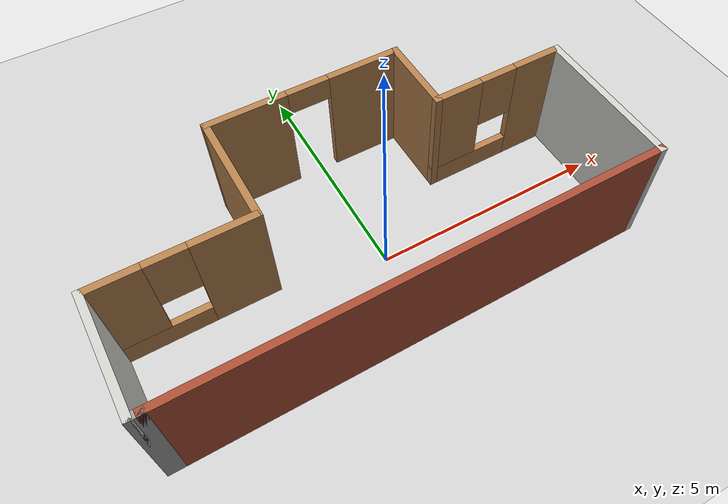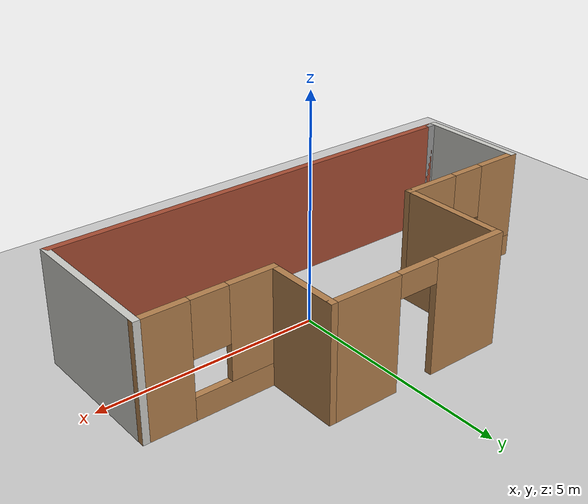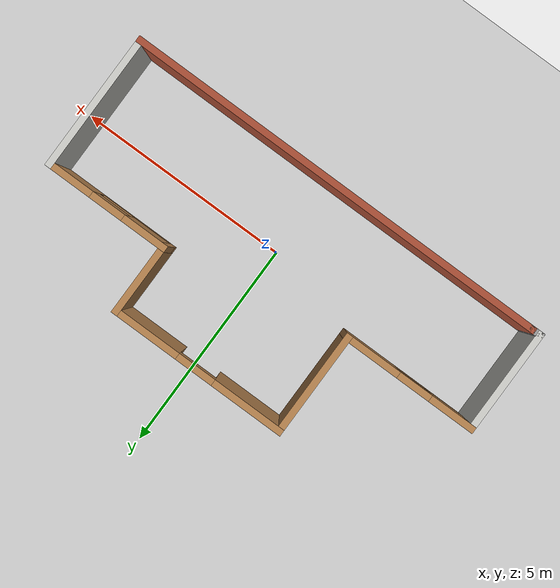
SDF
<sdf version="1.6">
 <world name="default">
  <light name="sun" type="directional">
   <pose>0 0 10 0 -0 0</pose>
   <diffuse>0.8 0.8 0.8 1</diffuse>
   <specular>0.2 0.2 0.2 1</specular>
   <attenuation>
    <range>1000</range>
    <constant>0.9</constant>
    <linear>0.01</linear>
    <quadratic>0.001</quadratic>
   </attenuation>
   <direction>-0.5 0.1 -0.9</direction>
  </light>
  <model name="ground_plane">
   <static>1</static>
   <link name="link">
    <collision name="collision">
     <geometry><plane><normal>0 0 1</normal><size>100 100</size></plane></geometry>
     <surface><friction><ode><mu>100</mu><mu2>50</mu2></ode></friction></surface>
    </collision>
    <visual name="visual">
     <cast_shadows>0</cast_shadows>
     <geometry><plane><normal>0 0 1</normal><size>100 100</size></plane></geometry>
     <material>
      <script><uri>file://media/materials/scripts/gazebo.material</uri><name>Gazebo/Grey</name></script>
     </material>
    </visual>
   </link>
  </model>
  <gravity>0 0 -9.8</gravity>
  <magnetic_field>6e-06 2.3e-05 -4.2e-05</magnetic_field>
  <atmosphere type="adiabatic"/>
  <physics name="default_physics" default="0" type="ode">
   <max_step_size>0.001</max_step_size>
   <real_time_factor>1</real_time_factor>
   <real_time_update_rate>1000</real_time_update_rate>
  </physics>
  <scene><ambient>0.4 0.4 0.4 1</ambient><background>0.7 0.7 0.7 1</background><shadows>1</shadows></scene>
  <audio><device>default</device></audio>
  <spherical_coordinates>
   <surface_model>EARTH_WGS84</surface_model>
   <latitude_deg>0</latitude_deg>
   <longitude_deg>0</longitude_deg>
   <elevation>0</elevation>
   <heading_deg>0</heading_deg>
  </spherical_coordinates>
  <model name="holzroom">
   <pose>-0.285 0.52 0 0 -0 0</pose>
   <link name="Wall_1">
    <collision name="Wall_1_Collision">
     <geometry><box><size>10 0.15 2.5</size></box></geometry>
     <pose>0 0 1.25 0 -0 0</pose>
    </collision>
    <visual name="Wall_1_Visual">
     <pose>0 0 1.25 0 -0 0</pose>
     <geometry><box><size>10 0.15 2.5</size></box></geometry>
     <material>
      <script><uri>file://media/materials/scripts/gazebo.material</uri><name>Gazebo/Bricks</name></script>
      <ambient>1 1 1 1</ambient>
     </material>
     <meta><layer>0</layer></meta>
    </visual>
    <pose>0.1 -2.35 0 0 -0 0</pose>
   </link>
   <link name="Wall_10">
    <collision name="Wall_10_Collision">
     <geometry><box><size>0.35 0.15 2.5</size></box></geometry>
     <pose>0 0 1.25 0 -0 0</pose>
    </collision>
    <visual name="Wall_10_Visual">
     <pose>0 0 1.25 0 -0 0</pose>
     <geometry><box><size>0.35 0.15 2.5</size></box></geometry>
     <material>
      <script><uri>file://media/materials/scripts/gazebo.material</uri><name>Gazebo/Grey</name></script>
      <ambient>1 1 1 1</ambient>
     </material>
     <meta><layer>0</layer></meta>
    </visual>
    <pose>-4.925 -2.35 0 0 -0 0</pose>
   </link>
   <link name="Wall_2">
    <collision name="Wall_2_Collision">
     <geometry><box><size>3.25 0.15 2.5</size></box></geometry>
     <pose>0 0 1.25 0 -0 0</pose>
    </collision>
    <visual name="Wall_2_Visual">
     <pose>0 0 1.25 0 -0 0</pose>
     <geometry><box><size>3.25 0.15 2.5</size></box></geometry>
     <material>
      <script><uri>file://media/materials/scripts/gazebo.material</uri><name>Gazebo/CeilingTiled</name></script>
      <ambient>1 1 1 1</ambient>
     </material>
     <meta><layer>0</layer></meta>
    </visual>
    <pose>5.025 -0.8 0 0 -0 1.5708</pose>
   </link>
   <link name="Wall_3">
    <pose>3.6 0.75 0 0 -0 3.14159</pose>
    <visual name="Wall_3_Visual_0">
     <pose>-0.9419 0 1.25 0 -0 0</pose>
     <geometry><box><size>1.1162 0.15 2.5</size></box></geometry>
     <material>
      <script><uri>file://media/materials/scripts/gazebo.material</uri><name>Gazebo/Wood</name></script>
      <ambient>1 1 1 1</ambient>
     </material>
     <meta><layer>0</layer></meta>
    </visual>
    <collision name="Wall_3_Collision_0">
     <geometry><box><size>1.1162 0.15 2.5</size></box></geometry>
     <pose>-0.9419 0 1.25 0 -0 0</pose>
    </collision>
    <visual name="Wall_3_Visual_1">
     <pose>0.5581 0 0.25 0 -0 0</pose>
     <geometry><box><size>1.8838 0.15 0.5</size></box></geometry>
     <material>
      <script><uri>file://media/materials/scripts/gazebo.material</uri><name>Gazebo/Wood</name></script>
      <ambient>1 1 1 1</ambient>
     </material>
     <meta><layer>0</layer></meta>
    </visual>
    <collision name="Wall_3_Collision_1">
     <geometry><box><size>1.8838 0.15 0.5</size></box></geometry>
     <pose>0.5581 0 0.25 0 -0 0</pose>
    </collision>
    <visual name="Wall_3_Visual_2">
     <pose>0.9581 0 1.5 0 -0 0</pose>
     <geometry><box><size>1.0838 0.15 2</size></box></geometry>
     <material>
      <script><uri>file://media/materials/scripts/gazebo.material</uri><name>Gazebo/Wood</name></script>
      <ambient>1 1 1 1</ambient>
     </material>
     <meta><layer>0</layer></meta>
    </visual>
    <collision name="Wall_3_Collision_2">
     <geometry><box><size>1.0838 0.15 2</size></box></geometry>
     <pose>0.9581 0 1.5 0 -0 0</pose>
    </collision>
    <visual name="Wall_3_Visual_3">
     <pose>0.0162 0 1.9 0 -0 0</pose>
     <geometry><box><size>0.8 0.15 1.2</size></box></geometry>
     <material>
      <script><uri>file://media/materials/scripts/gazebo.material</uri><name>Gazebo/Wood</name></script>
      <ambient>1 1 1 1</ambient>
     </material>
     <meta><layer>0</layer></meta>
    </visual>
    <collision name="Wall_3_Collision_3">
     <geometry><box><size>0.8 0.15 1.2</size></box></geometry>
     <pose>0.0162 0 1.9 0 -0 0</pose>
    </collision>
   </link>
   <link name="Wall_5">
    <collision name="Wall_5_Collision">
     <geometry><box><size>1.75 0.15 2.5</size></box></geometry>
     <pose>0 0 1.25 0 -0 0</pose>
    </collision>
    <visual name="Wall_5_Visual">
     <pose>0 0 1.25 0 -0 0</pose>
     <geometry><box><size>1.75 0.15 2.5</size></box></geometry>
     <material>
      <script><uri>file://media/materials/scripts/gazebo.material</uri><name>Gazebo/Wood</name></script>
      <ambient>1 1 1 1</ambient>
     </material>
     <meta><layer>0</layer></meta>
    </visual>
    <pose>2.175 1.55 0 0 -0 1.5708</pose>
   </link>
   <link name="Wall_6">
    <pose>0.125 2.35 0 0 -0 3.14159</pose>
    <visual name="Wall_6_Visual_0">
     <pose>-1.3173 0 1.25 0 -0 0</pose>
     <geometry><box><size>1.61539 0.15 2.5</size></box></geometry>
     <material>
      <script><uri>file://media/materials/scripts/gazebo.material</uri><name>Gazebo/Wood</name></script>
      <ambient>1 1 1 1</ambient>
     </material>
     <meta><layer>0</layer></meta>
    </visual>
    <collision name="Wall_6_Collision_0">
     <geometry><box><size>1.61539 0.15 2.5</size></box></geometry>
     <pose>-1.3173 0 1.25 0 -0 0</pose>
    </collision>
    <visual name="Wall_6_Visual_1">
     <pose>1.2577 0 1.25 0 -0 0</pose>
     <geometry><box><size>1.73461 0.15 2.5</size></box></geometry>
     <material>
      <script><uri>file://media/materials/scripts/gazebo.material</uri><name>Gazebo/Wood</name></script>
      <ambient>1 1 1 1</ambient>
     </material>
     <meta><layer>0</layer></meta>
    </visual>
    <collision name="Wall_6_Collision_1">
     <geometry><box><size>1.73461 0.15 2.5</size></box></geometry>
     <pose>1.2577 0 1.25 0 -0 0</pose>
    </collision>
    <visual name="Wall_6_Visual_2">
     <pose>-0.059606 0 2.25 0 -0 0</pose>
     <geometry><box><size>0.9 0.15 0.5</size></box></geometry>
     <material>
      <script><uri>file://media/materials/scripts/gazebo.material</uri><name>Gazebo/Wood</name></script>
      <ambient>1 1 1 1</ambient>
     </material>
     <meta><layer>0</layer></meta>
    </visual>
    <collision name="Wall_6_Collision_2">
     <geometry><box><size>0.9 0.15 0.5</size></box></geometry>
     <pose>-0.059606 0 2.25 0 -0 0</pose>
    </collision>
   </link>
   <link name="Wall_7">
    <collision name="Wall_7_Collision">
     <geometry><box><size>2.5 0.15 2.5</size></box></geometry>
     <pose>0 0 1.25 0 -0 0</pose>
    </collision>
    <visual name="Wall_7_Visual">
     <pose>0 0 1.25 0 -0 0</pose>
     <geometry><box><size>2.5 0.15 2.5</size></box></geometry>
     <material>
      <script><uri>file://media/materials/scripts/gazebo.material</uri><name>Gazebo/Wood</name></script>
      <ambient>1 1 1 1</ambient>
     </material>
     <meta><layer>0</layer></meta>
    </visual>
    <pose>-1.925 1.175 0 0 -0 -1.5708</pose>
   </link>
   <link name="Wall_8">
    <pose>-3.475 0 0 0 -0 3.14159</pose>
    <visual name="Wall_8_Visual_0">
     <pose>-0.951627 0 1.25 0 -0 0</pose>
     <geometry><box><size>1.34675 0.15 2.5</size></box></geometry>
     <material>
      <script><uri>file://media/materials/scripts/gazebo.material</uri><name>Gazebo/Wood</name></script>
      <ambient>1 1 1 1</ambient>
     </material>
     <meta><layer>0</layer></meta>
    </visual>
    <collision name="Wall_8_Collision_0">
     <geometry><box><size>1.34675 0.15 2.5</size></box></geometry>
     <pose>-0.951627 0 1.25 0 -0 0</pose>
    </collision>
    <visual name="Wall_8_Visual_1">
     <pose>0.673373 0 0.25 0 -0 0</pose>
     <geometry><box><size>1.90325 0.15 0.5</size></box></geometry>
     <material>
      <script><uri>file://media/materials/scripts/gazebo.material</uri><name>Gazebo/Wood</name></script>
      <ambient>1 1 1 1</ambient>
     </material>
     <meta><layer>0</layer></meta>
    </visual>
    <collision name="Wall_8_Collision_1">
     <geometry><box><size>1.90325 0.15 0.5</size></box></geometry>
     <pose>0.673373 0 0.25 0 -0 0</pose>
    </collision>
    <visual name="Wall_8_Visual_2">
     <pose>1.07337 0 1.5 0 -0 0</pose>
     <geometry><box><size>1.10326 0.15 2</size></box></geometry>
     <material>
      <script><uri>file://media/materials/scripts/gazebo.material</uri><name>Gazebo/Wood</name></script>
      <ambient>1 1 1 1</ambient>
     </material>
     <meta><layer>0</layer></meta>
    </visual>
    <collision name="Wall_8_Collision_2">
     <geometry><box><size>1.10326 0.15 2</size></box></geometry>
     <pose>1.07337 0 1.5 0 -0 0</pose>
    </collision>
    <visual name="Wall_8_Visual_3">
     <pose>0.121745 0 1.9 0 -0 0</pose>
     <geometry><box><size>0.8 0.15 1.2</size></box></geometry>
     <material>
      <script><uri>file://media/materials/scripts/gazebo.material</uri><name>Gazebo/Wood</name></script>
      <ambient>1 1 1 1</ambient>
     </material>
     <meta><layer>0</layer></meta>
    </visual>
    <collision name="Wall_8_Collision_3">
     <geometry><box><size>0.8 0.15 1.2</size></box></geometry>
     <pose>0.121745 0 1.9 0 -0 0</pose>
    </collision>
   </link>
   <link name="Wall_9">
    <collision name="Wall_9_Collision">
     <geometry><box><size>2.5 0.15 2.5</size></box></geometry>
     <pose>0 0 1.25 0 -0 0</pose>
    </collision>
    <visual name="Wall_9_Visual">
     <pose>0 0 1.25 0 -0 0</pose>
     <geometry><box><size>2.5 0.15 2.5</size></box></geometry>
     <material>
      <script><uri>file://media/materials/scripts/gazebo.material</uri><name>Gazebo/CeilingTiled</name></script>
      <ambient>1 1 1 1</ambient>
     </material>
     <meta><layer>0</layer></meta>
    </visual>
    <pose>-5.025 -1.175 0 0 -0 -1.5708</pose>
   </link>
   <static>1</static>
  </model>
 </world>
</sdf>
